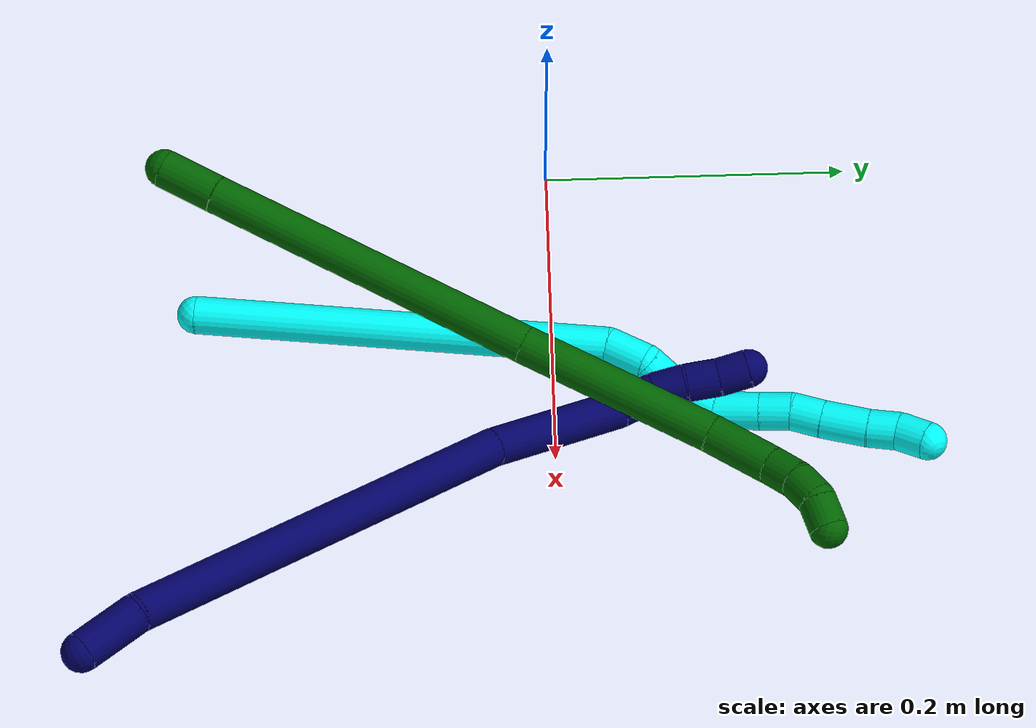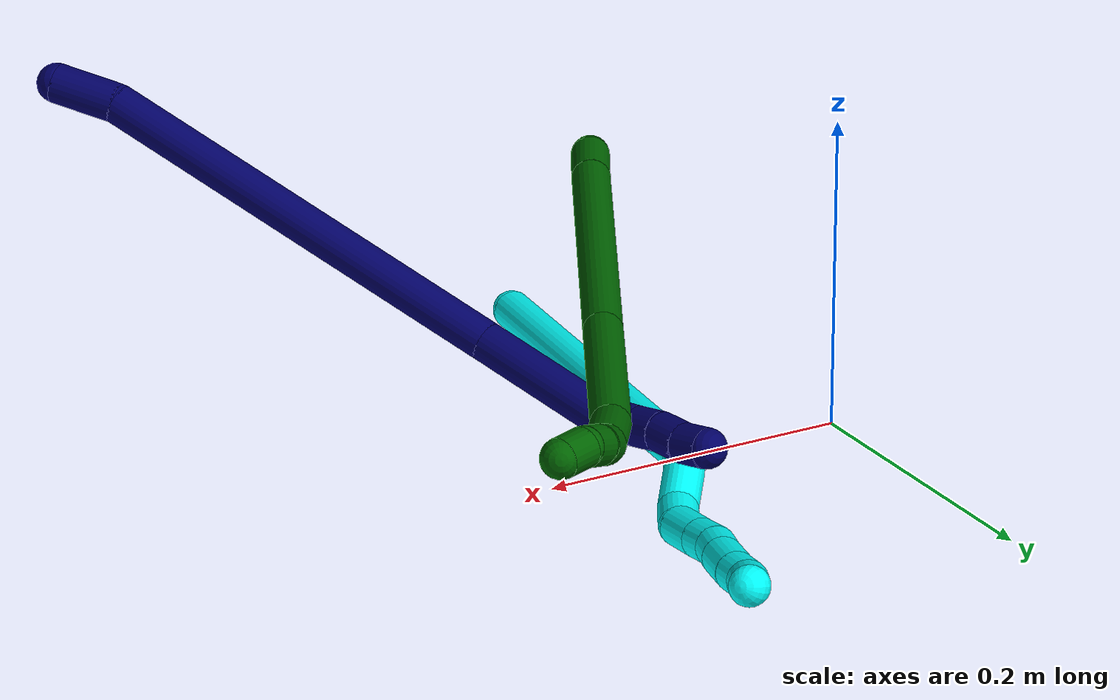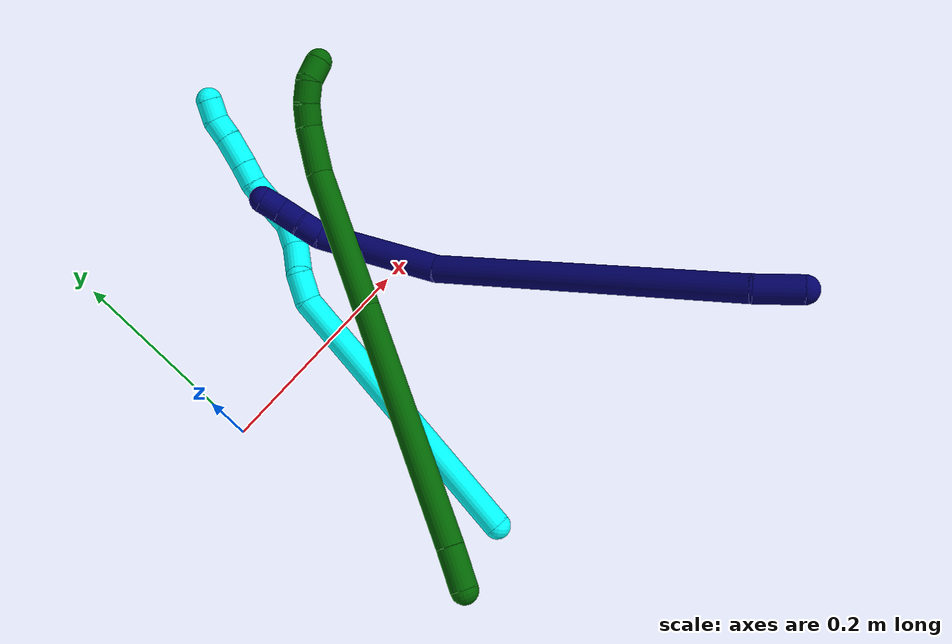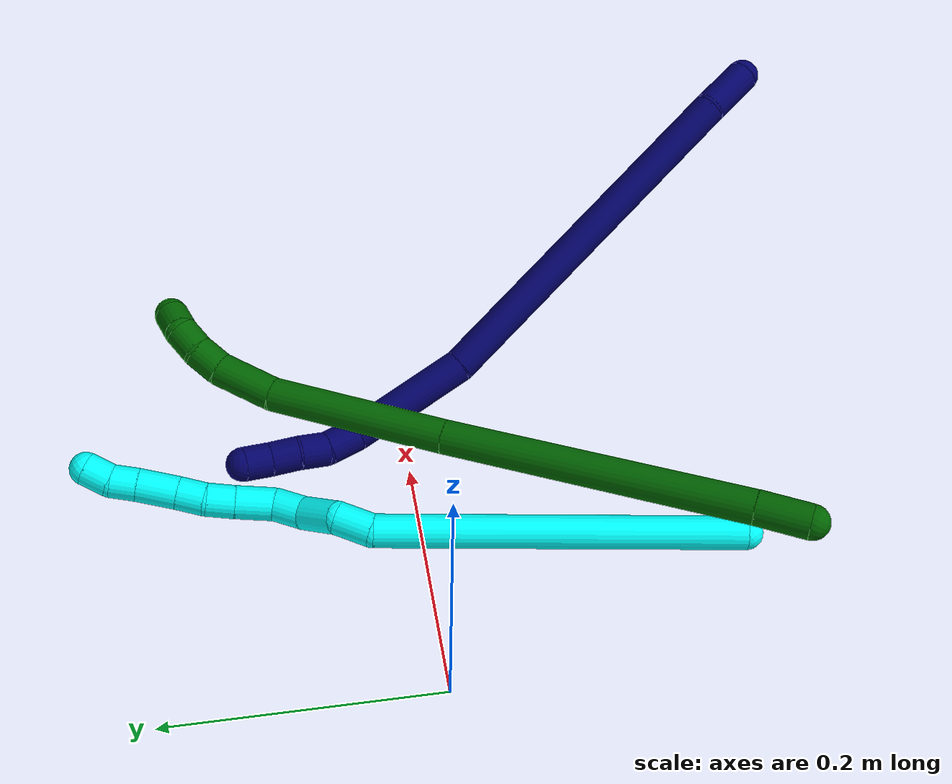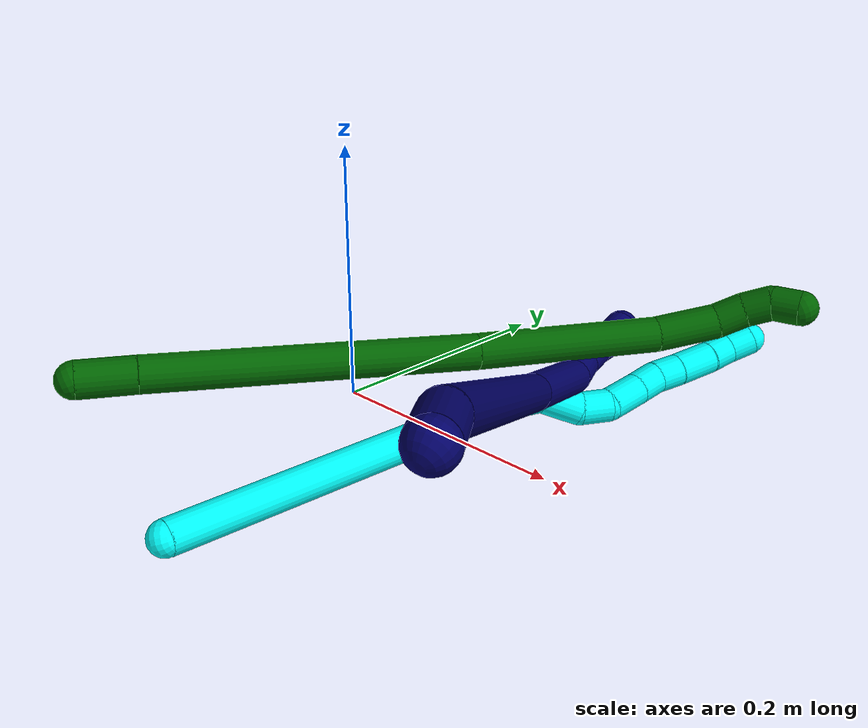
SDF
<sdf version="1.7">
 <world name="default">
  <model name="3">
   <static>0</static>
   <link name="3">
    <collision name="collision-cylinder-e_1_1_4">
     <pose>0.004925 0.107687 0.08381 -0.909442 0.036074 -0.017638</pose>
     <geometry><cylinder><radius>0.0125</radius><length>0.273092</length></cylinder></geometry>
     <surface>
      <friction><ode><mu>1.16</mu><mu2>1.16</mu2><slip1>0</slip1><slip2>0</slip2></ode></friction>
      <contact><ode><kp>1e+06</kp><kd>1</kd><max_vel>0</max_vel><min_depth>0.001</min_depth></ode></contact>
     </surface>
    </collision>
    <visual name="visual-cylinder-e_1_1_4">
     <pose>0.004925 0.107687 0.08381 -0.909442 0.036074 -0.017638</pose>
     <geometry><cylinder><radius>0.0125</radius><length>0.273092</length></cylinder></geometry>
     <material><ambient>0.003922 1 0.996078 1</ambient></material>
    </visual>
    <collision name="collision-cylinder-e_2_4_5">
     <pose>0.01145 0.222321 0.179661 -0.523342 0.11464 -0.030733</pose>
     <geometry><cylinder><radius>0.0125</radius><length>0.027987</length></cylinder></geometry>
     <surface>
      <friction><ode><mu>1.16</mu><mu2>1.16</mu2><slip1>0</slip1><slip2>0</slip2></ode></friction>
      <contact><ode><kp>1e+06</kp><kd>1</kd><max_vel>0</max_vel><min_depth>0.001</min_depth></ode></contact>
     </surface>
    </collision>
    <visual name="visual-cylinder-e_2_4_5">
     <pose>0.01145 0.222321 0.179661 -0.523342 0.11464 -0.030733</pose>
     <geometry><cylinder><radius>0.0125</radius><length>0.027987</length></cylinder></geometry>
     <material><ambient>0.003922 1 0.996078 1</ambient></material>
    </visual>
    <collision name="collision-cylinder-e_3_5_6">
     <pose>0.022306 0.235773 0.202808 -0.529772 0.623421 -0.174365</pose>
     <geometry><cylinder><radius>0.0125</radius><length>0.031704</length></cylinder></geometry>
     <surface>
      <friction><ode><mu>1.16</mu><mu2>1.16</mu2><slip1>0</slip1><slip2>0</slip2></ode></friction>
      <contact><ode><kp>1e+06</kp><kd>1</kd><max_vel>0</max_vel><min_depth>0.001</min_depth></ode></contact>
     </surface>
    </collision>
    <visual name="visual-cylinder-e_3_5_6">
     <pose>0.022306 0.235773 0.202808 -0.529772 0.623421 -0.174365</pose>
     <geometry><cylinder><radius>0.0125</radius><length>0.031704</length></cylinder></geometry>
     <material><ambient>0.003922 1 0.996078 1</ambient></material>
    </visual>
    <collision name="collision-cylinder-e_4_6_7">
     <pose>0.033992 0.248415 0.22385 -0.553411 0.20527 -0.058484</pose>
     <geometry><cylinder><radius>0.0125</radius><length>0.02386</length></cylinder></geometry>
     <surface>
      <friction><ode><mu>1.16</mu><mu2>1.16</mu2><slip1>0</slip1><slip2>0</slip2></ode></friction>
      <contact><ode><kp>1e+06</kp><kd>1</kd><max_vel>0</max_vel><min_depth>0.001</min_depth></ode></contact>
     </surface>
    </collision>
    <visual name="visual-cylinder-e_4_6_7">
     <pose>0.033992 0.248415 0.22385 -0.553411 0.20527 -0.058484</pose>
     <geometry><cylinder><radius>0.0125</radius><length>0.02386</length></cylinder></geometry>
     <material><ambient>0.003922 1 0.996078 1</ambient></material>
    </visual>
    <collision name="collision-cylinder-e_5_7_8">
     <pose>0.035342 0.266265 0.243169 -0.895375 -0.071931 0.034553</pose>
     <geometry><cylinder><radius>0.0125</radius><length>0.030092</length></cylinder></geometry>
     <surface>
      <friction><ode><mu>1.16</mu><mu2>1.16</mu2><slip1>0</slip1><slip2>0</slip2></ode></friction>
      <contact><ode><kp>1e+06</kp><kd>1</kd><max_vel>0</max_vel><min_depth>0.001</min_depth></ode></contact>
     </surface>
    </collision>
    <visual name="visual-cylinder-e_5_7_8">
     <pose>0.035342 0.266265 0.243169 -0.895375 -0.071931 0.034553</pose>
     <geometry><cylinder><radius>0.0125</radius><length>0.030092</length></cylinder></geometry>
     <material><ambient>0.003922 1 0.996078 1</ambient></material>
    </visual>
    <collision name="collision-cylinder-e_6_8_9">
     <pose>0.033155 0.286081 0.259393 -0.869603 -0.103885 0.048283</pose>
     <geometry><cylinder><radius>0.0125</radius><length>0.021326</length></cylinder></geometry>
     <surface>
      <friction><ode><mu>1.16</mu><mu2>1.16</mu2><slip1>0</slip1><slip2>0</slip2></ode></friction>
      <contact><ode><kp>1e+06</kp><kd>1</kd><max_vel>0</max_vel><min_depth>0.001</min_depth></ode></contact>
     </surface>
    </collision>
    <visual name="visual-cylinder-e_6_8_9">
     <pose>0.033155 0.286081 0.259393 -0.869603 -0.103885 0.048283</pose>
     <geometry><cylinder><radius>0.0125</radius><length>0.021326</length></cylinder></geometry>
     <material><ambient>0.003922 1 0.996078 1</ambient></material>
    </visual>
    <collision name="collision-cylinder-e_7_9_10">
     <pose>0.03236 0.300639 0.274285 -0.675833 0.030047 -0.010559</pose>
     <geometry><cylinder><radius>0.0125</radius><length>0.020647</length></cylinder></geometry>
     <surface>
      <friction><ode><mu>1.16</mu><mu2>1.16</mu2><slip1>0</slip1><slip2>0</slip2></ode></friction>
      <contact><ode><kp>1e+06</kp><kd>1</kd><max_vel>0</max_vel><min_depth>0.001</min_depth></ode></contact>
     </surface>
    </collision>
    <visual name="visual-cylinder-e_7_9_10">
     <pose>0.03236 0.300639 0.274285 -0.675833 0.030047 -0.010559</pose>
     <geometry><cylinder><radius>0.0125</radius><length>0.020647</length></cylinder></geometry>
     <material><ambient>0.003922 1 0.996078 1</ambient></material>
    </visual>
    <collision name="collision-cylinder-e_8_10_11">
     <pose>0.032638 0.317194 0.293895 -0.718173 -0.002083 0.000782</pose>
     <geometry><cylinder><radius>0.0125</radius><length>0.030701</length></cylinder></geometry>
     <surface>
      <friction><ode><mu>1.16</mu><mu2>1.16</mu2><slip1>0</slip1><slip2>0</slip2></ode></friction>
      <contact><ode><kp>1e+06</kp><kd>1</kd><max_vel>0</max_vel><min_depth>0.001</min_depth></ode></contact>
     </surface>
    </collision>
    <visual name="visual-cylinder-e_8_10_11">
     <pose>0.032638 0.317194 0.293895 -0.718173 -0.002083 0.000782</pose>
     <geometry><cylinder><radius>0.0125</radius><length>0.030701</length></cylinder></geometry>
     <material><ambient>0.003922 1 0.996078 1</ambient></material>
    </visual>
    <collision name="collision-cylinder-e_9_11_12">
     <pose>0.032034 0.334467 0.312486 -0.795301 -0.056857 0.023887</pose>
     <geometry><cylinder><radius>0.0125</radius><length>0.020121</length></cylinder></geometry>
     <surface>
      <friction><ode><mu>1.16</mu><mu2>1.16</mu2><slip1>0</slip1><slip2>0</slip2></ode></friction>
      <contact><ode><kp>1e+06</kp><kd>1</kd><max_vel>0</max_vel><min_depth>0.001</min_depth></ode></contact>
     </surface>
    </collision>
    <visual name="visual-cylinder-e_9_11_12">
     <pose>0.032034 0.334467 0.312486 -0.795301 -0.056857 0.023887</pose>
     <geometry><cylinder><radius>0.0125</radius><length>0.020121</length></cylinder></geometry>
     <material><ambient>0.003922 1 0.996078 1</ambient></material>
    </visual>
    <collision name="collision-cylinder-e_10_12_2">
     <pose>0.030598 0.346332 0.328573 -0.478061 -0.084513 0.020607</pose>
     <geometry><cylinder><radius>0.0125</radius><length>0.020472</length></cylinder></geometry>
     <surface>
      <friction><ode><mu>1.16</mu><mu2>1.16</mu2><slip1>0</slip1><slip2>0</slip2></ode></friction>
      <contact><ode><kp>1e+06</kp><kd>1</kd><max_vel>0</max_vel><min_depth>0.001</min_depth></ode></contact>
     </surface>
    </collision>
    <visual name="visual-cylinder-e_10_12_2">
     <pose>0.030598 0.346332 0.328573 -0.478061 -0.084513 0.020607</pose>
     <geometry><cylinder><radius>0.0125</radius><length>0.020472</length></cylinder></geometry>
     <material><ambient>0.003922 1 0.996078 1</ambient></material>
    </visual>
    <collision name="collision-sphere-2">
     <pose>0.029734 0.351024 0.337629 0 -0 0</pose>
     <geometry><sphere><radius>0.0125</radius></sphere></geometry>
     <surface>
      <friction><ode><mu>1.16</mu><mu2>1.16</mu2><slip1>0</slip1><slip2>0</slip2></ode></friction>
      <contact><ode><kp>1e+06</kp><kd>1</kd><max_vel>0</max_vel><min_depth>0.001</min_depth></ode></contact>
     </surface>
    </collision>
    <visual name="visual-sphere-2">
     <pose>0.029734 0.351024 0.337629 0 -0 0</pose>
     <geometry><sphere><radius>0.0125</radius></sphere></geometry>
     <material><ambient>0.003922 1 0.996078 1</ambient></material>
    </visual>
    <collision name="collision-sphere-12">
     <pose>0.031462 0.34164 0.319517 0 -0 0</pose>
     <geometry><sphere><radius>0.0125</radius></sphere></geometry>
     <surface>
      <friction><ode><mu>1.16</mu><mu2>1.16</mu2><slip1>0</slip1><slip2>0</slip2></ode></friction>
      <contact><ode><kp>1e+06</kp><kd>1</kd><max_vel>0</max_vel><min_depth>0.001</min_depth></ode></contact>
     </surface>
    </collision>
    <visual name="visual-sphere-12">
     <pose>0.031462 0.34164 0.319517 0 -0 0</pose>
     <geometry><sphere><radius>0.0125</radius></sphere></geometry>
     <material><ambient>0.003922 1 0.996078 1</ambient></material>
    </visual>
    <collision name="collision-sphere-11">
     <pose>0.032606 0.327295 0.305454 0 -0 0</pose>
     <geometry><sphere><radius>0.0125</radius></sphere></geometry>
     <surface>
      <friction><ode><mu>1.16</mu><mu2>1.16</mu2><slip1>0</slip1><slip2>0</slip2></ode></friction>
      <contact><ode><kp>1e+06</kp><kd>1</kd><max_vel>0</max_vel><min_depth>0.001</min_depth></ode></contact>
     </surface>
    </collision>
    <visual name="visual-sphere-11">
     <pose>0.032606 0.327295 0.305454 0 -0 0</pose>
     <geometry><sphere><radius>0.0125</radius></sphere></geometry>
     <material><ambient>0.003922 1 0.996078 1</ambient></material>
    </visual>
    <collision name="collision-sphere-10">
     <pose>0.03267 0.307094 0.282336 0 -0 0</pose>
     <geometry><sphere><radius>0.0125</radius></sphere></geometry>
     <surface>
      <friction><ode><mu>1.16</mu><mu2>1.16</mu2><slip1>0</slip1><slip2>0</slip2></ode></friction>
      <contact><ode><kp>1e+06</kp><kd>1</kd><max_vel>0</max_vel><min_depth>0.001</min_depth></ode></contact>
     </surface>
    </collision>
    <visual name="visual-sphere-10">
     <pose>0.03267 0.307094 0.282336 0 -0 0</pose>
     <geometry><sphere><radius>0.0125</radius></sphere></geometry>
     <material><ambient>0.003922 1 0.996078 1</ambient></material>
    </visual>
    <collision name="collision-sphere-9">
     <pose>0.032049 0.294184 0.266235 0 -0 0</pose>
     <geometry><sphere><radius>0.0125</radius></sphere></geometry>
     <surface>
      <friction><ode><mu>1.16</mu><mu2>1.16</mu2><slip1>0</slip1><slip2>0</slip2></ode></friction>
      <contact><ode><kp>1e+06</kp><kd>1</kd><max_vel>0</max_vel><min_depth>0.001</min_depth></ode></contact>
     </surface>
    </collision>
    <visual name="visual-sphere-9">
     <pose>0.032049 0.294184 0.266235 0 -0 0</pose>
     <geometry><sphere><radius>0.0125</radius></sphere></geometry>
     <material><ambient>0.003922 1 0.996078 1</ambient></material>
    </visual>
    <collision name="collision-sphere-4">
     <pose>0.009849 0.215373 0.16762 0 -0 0</pose>
     <geometry><sphere><radius>0.0125</radius></sphere></geometry>
     <surface>
      <friction><ode><mu>1.16</mu><mu2>1.16</mu2><slip1>0</slip1><slip2>0</slip2></ode></friction>
      <contact><ode><kp>1e+06</kp><kd>1</kd><max_vel>0</max_vel><min_depth>0.001</min_depth></ode></contact>
     </surface>
    </collision>
    <visual name="visual-sphere-4">
     <pose>0.009849 0.215373 0.16762 0 -0 0</pose>
     <geometry><sphere><radius>0.0125</radius></sphere></geometry>
     <material><ambient>0.003922 1 0.996078 1</ambient></material>
    </visual>
    <collision name="collision-sphere-1">
     <geometry><sphere><radius>0.0125</radius></sphere></geometry>
     <surface>
      <friction><ode><mu>1.16</mu><mu2>1.16</mu2><slip1>0</slip1><slip2>0</slip2></ode></friction>
      <contact><ode><kp>1e+06</kp><kd>1</kd><max_vel>0</max_vel><min_depth>0.001</min_depth></ode></contact>
     </surface>
    </collision>
    <visual name="visual-sphere-1">
     <geometry><sphere><radius>0.0125</radius></sphere></geometry>
     <material><ambient>0.003922 1 0.996078 1</ambient></material>
    </visual>
    <collision name="collision-sphere-8">
     <pose>0.034261 0.277977 0.252551 0 -0 0</pose>
     <geometry><sphere><radius>0.0125</radius></sphere></geometry>
     <surface>
      <friction><ode><mu>1.16</mu><mu2>1.16</mu2><slip1>0</slip1><slip2>0</slip2></ode></friction>
      <contact><ode><kp>1e+06</kp><kd>1</kd><max_vel>0</max_vel><min_depth>0.001</min_depth></ode></contact>
     </surface>
    </collision>
    <visual name="visual-sphere-8">
     <pose>0.034261 0.277977 0.252551 0 -0 0</pose>
     <geometry><sphere><radius>0.0125</radius></sphere></geometry>
     <material><ambient>0.003922 1 0.996078 1</ambient></material>
    </visual>
    <collision name="collision-sphere-5">
     <pose>0.013051 0.229269 0.191702 0 -0 0</pose>
     <geometry><sphere><radius>0.0125</radius></sphere></geometry>
     <surface>
      <friction><ode><mu>1.16</mu><mu2>1.16</mu2><slip1>0</slip1><slip2>0</slip2></ode></friction>
      <contact><ode><kp>1e+06</kp><kd>1</kd><max_vel>0</max_vel><min_depth>0.001</min_depth></ode></contact>
     </surface>
    </collision>
    <visual name="visual-sphere-5">
     <pose>0.013051 0.229269 0.191702 0 -0 0</pose>
     <geometry><sphere><radius>0.0125</radius></sphere></geometry>
     <material><ambient>0.003922 1 0.996078 1</ambient></material>
    </visual>
    <collision name="collision-sphere-6">
     <pose>0.03156 0.242276 0.213914 0 -0 0</pose>
     <geometry><sphere><radius>0.0125</radius></sphere></geometry>
     <surface>
      <friction><ode><mu>1.16</mu><mu2>1.16</mu2><slip1>0</slip1><slip2>0</slip2></ode></friction>
      <contact><ode><kp>1e+06</kp><kd>1</kd><max_vel>0</max_vel><min_depth>0.001</min_depth></ode></contact>
     </surface>
    </collision>
    <visual name="visual-sphere-6">
     <pose>0.03156 0.242276 0.213914 0 -0 0</pose>
     <geometry><sphere><radius>0.0125</radius></sphere></geometry>
     <material><ambient>0.003922 1 0.996078 1</ambient></material>
    </visual>
    <collision name="collision-sphere-7">
     <pose>0.036424 0.254553 0.233786 0 -0 0</pose>
     <geometry><sphere><radius>0.0125</radius></sphere></geometry>
     <surface>
      <friction><ode><mu>1.16</mu><mu2>1.16</mu2><slip1>0</slip1><slip2>0</slip2></ode></friction>
      <contact><ode><kp>1e+06</kp><kd>1</kd><max_vel>0</max_vel><min_depth>0.001</min_depth></ode></contact>
     </surface>
    </collision>
    <visual name="visual-sphere-7">
     <pose>0.036424 0.254553 0.233786 0 -0 0</pose>
     <geometry><sphere><radius>0.0125</radius></sphere></geometry>
     <material><ambient>0.003922 1 0.996078 1</ambient></material>
    </visual>
    <inertial>
     <pose>0.01579 0.185822 0.160471 0 -0 0</pose>
     <mass>0.5</mass>
     <inertia>
      <ixx>0.001699</ixx>
      <ixy>0</ixy>
      <ixz>0</ixz>
      <iyy>0.001064</iyy>
      <iyz>0</iyz>
      <izz>-0.001398</izz>
     </inertia>
    </inertial>
   </link>
   <pose>0.095574 -0.234003 0.011495 -0.462045 1.20747 0.073544</pose>
  </model>
  <model name="6">
   <static>0</static>
   <link name="6">
    <collision name="collision-cylinder-e_1_1_4">
     <pose>0.004081 0.005126 -0.017813 -2.86141 0.216715 -1.31415</pose>
     <geometry><cylinder><radius>0.0125</radius><length>0.037959</length></cylinder></geometry>
     <surface>
      <friction><ode><mu>1.16</mu><mu2>1.16</mu2><slip1>0</slip1><slip2>0</slip2></ode></friction>
      <contact><ode><kp>1e+06</kp><kd>1</kd><max_vel>0</max_vel><min_depth>0.001</min_depth></ode></contact>
     </surface>
    </collision>
    <visual name="visual-cylinder-e_1_1_4">
     <pose>0.004081 0.005126 -0.017813 -2.86141 0.216715 -1.31415</pose>
     <geometry><cylinder><radius>0.0125</radius><length>0.037959</length></cylinder></geometry>
     <material><ambient>0 0.392157 0.003922 1</ambient></material>
    </visual>
    <collision name="collision-cylinder-e_2_4_5">
     <pose>0.035837 0.040638 -0.138935 -2.85553 0.251551 -1.44105</pose>
     <geometry><cylinder><radius>0.0125</radius><length>0.222371</length></cylinder></geometry>
     <surface>
      <friction><ode><mu>1.16</mu><mu2>1.16</mu2><slip1>0</slip1><slip2>0</slip2></ode></friction>
      <contact><ode><kp>1e+06</kp><kd>1</kd><max_vel>0</max_vel><min_depth>0.001</min_depth></ode></contact>
     </surface>
    </collision>
    <visual name="visual-cylinder-e_2_4_5">
     <pose>0.035837 0.040638 -0.138935 -2.85553 0.251551 -1.44105</pose>
     <geometry><cylinder><radius>0.0125</radius><length>0.222371</length></cylinder></geometry>
     <material><ambient>0 0.392157 0.003922 1</ambient></material>
    </visual>
    <collision name="collision-cylinder-e_3_5_6">
     <pose>0.078714 0.08794 -0.304689 -2.87704 0.230803 -1.43337</pose>
     <geometry><cylinder><radius>0.0125</radius><length>0.132913</length></cylinder></geometry>
     <surface>
      <friction><ode><mu>1.16</mu><mu2>1.16</mu2><slip1>0</slip1><slip2>0</slip2></ode></friction>
      <contact><ode><kp>1e+06</kp><kd>1</kd><max_vel>0</max_vel><min_depth>0.001</min_depth></ode></contact>
     </surface>
    </collision>
    <visual name="visual-cylinder-e_3_5_6">
     <pose>0.078714 0.08794 -0.304689 -2.87704 0.230803 -1.43337</pose>
     <geometry><cylinder><radius>0.0125</radius><length>0.132913</length></cylinder></geometry>
     <material><ambient>0 0.392157 0.003922 1</ambient></material>
    </visual>
    <collision name="collision-cylinder-e_4_6_7">
     <pose>0.09465 0.109586 -0.389034 -2.92887 0.032708 -0.30402</pose>
     <geometry><cylinder><radius>0.0125</radius><length>0.044838</length></cylinder></geometry>
     <surface>
      <friction><ode><mu>1.16</mu><mu2>1.16</mu2><slip1>0</slip1><slip2>0</slip2></ode></friction>
      <contact><ode><kp>1e+06</kp><kd>1</kd><max_vel>0</max_vel><min_depth>0.001</min_depth></ode></contact>
     </surface>
    </collision>
    <visual name="visual-cylinder-e_4_6_7">
     <pose>0.09465 0.109586 -0.389034 -2.92887 0.032708 -0.30402</pose>
     <geometry><cylinder><radius>0.0125</radius><length>0.044838</length></cylinder></geometry>
     <material><ambient>0 0.392157 0.003922 1</ambient></material>
    </visual>
    <collision name="collision-cylinder-e_5_7_8">
     <pose>0.093017 0.115512 -0.421382 -3.02763 -0.221332 2.19308</pose>
     <geometry><cylinder><radius>0.0125</radius><length>0.021553</length></cylinder></geometry>
     <surface>
      <friction><ode><mu>1.16</mu><mu2>1.16</mu2><slip1>0</slip1><slip2>0</slip2></ode></friction>
      <contact><ode><kp>1e+06</kp><kd>1</kd><max_vel>0</max_vel><min_depth>0.001</min_depth></ode></contact>
     </surface>
    </collision>
    <visual name="visual-cylinder-e_5_7_8">
     <pose>0.093017 0.115512 -0.421382 -3.02763 -0.221332 2.19308</pose>
     <geometry><cylinder><radius>0.0125</radius><length>0.021553</length></cylinder></geometry>
     <material><ambient>0 0.392157 0.003922 1</ambient></material>
    </visual>
    <collision name="collision-cylinder-e_6_8_9">
     <pose>0.087212 0.119612 -0.440882 -2.8312 -0.347003 1.68407</pose>
     <geometry><cylinder><radius>0.0125</radius><length>0.020225</length></cylinder></geometry>
     <surface>
      <friction><ode><mu>1.16</mu><mu2>1.16</mu2><slip1>0</slip1><slip2>0</slip2></ode></friction>
      <contact><ode><kp>1e+06</kp><kd>1</kd><max_vel>0</max_vel><min_depth>0.001</min_depth></ode></contact>
     </surface>
    </collision>
    <visual name="visual-cylinder-e_6_8_9">
     <pose>0.087212 0.119612 -0.440882 -2.8312 -0.347003 1.68407</pose>
     <geometry><cylinder><radius>0.0125</radius><length>0.020225</length></cylinder></geometry>
     <material><ambient>0 0.392157 0.003922 1</ambient></material>
    </visual>
    <collision name="collision-cylinder-e_7_9_2">
     <pose>0.080586 0.129361 -0.456603 -2.34304 -0.321991 0.734824</pose>
     <geometry><cylinder><radius>0.0125</radius><length>0.020142</length></cylinder></geometry>
     <surface>
      <friction><ode><mu>1.16</mu><mu2>1.16</mu2><slip1>0</slip1><slip2>0</slip2></ode></friction>
      <contact><ode><kp>1e+06</kp><kd>1</kd><max_vel>0</max_vel><min_depth>0.001</min_depth></ode></contact>
     </surface>
    </collision>
    <visual name="visual-cylinder-e_7_9_2">
     <pose>0.080586 0.129361 -0.456603 -2.34304 -0.321991 0.734824</pose>
     <geometry><cylinder><radius>0.0125</radius><length>0.020142</length></cylinder></geometry>
     <material><ambient>0 0.392157 0.003922 1</ambient></material>
    </visual>
    <collision name="collision-sphere-2">
     <pose>0.077399 0.136204 -0.463269 0 -0 0</pose>
     <geometry><sphere><radius>0.0125</radius></sphere></geometry>
     <surface>
      <friction><ode><mu>1.16</mu><mu2>1.16</mu2><slip1>0</slip1><slip2>0</slip2></ode></friction>
      <contact><ode><kp>1e+06</kp><kd>1</kd><max_vel>0</max_vel><min_depth>0.001</min_depth></ode></contact>
     </surface>
    </collision>
    <visual name="visual-sphere-2">
     <pose>0.077399 0.136204 -0.463269 0 -0 0</pose>
     <geometry><sphere><radius>0.0125</radius></sphere></geometry>
     <material><ambient>0 0.392157 0.003922 1</ambient></material>
    </visual>
    <collision name="collision-sphere-9">
     <pose>0.083773 0.122517 -0.449938 0 -0 0</pose>
     <geometry><sphere><radius>0.0125</radius></sphere></geometry>
     <surface>
      <friction><ode><mu>1.16</mu><mu2>1.16</mu2><slip1>0</slip1><slip2>0</slip2></ode></friction>
      <contact><ode><kp>1e+06</kp><kd>1</kd><max_vel>0</max_vel><min_depth>0.001</min_depth></ode></contact>
     </surface>
    </collision>
    <visual name="visual-sphere-9">
     <pose>0.083773 0.122517 -0.449938 0 -0 0</pose>
     <geometry><sphere><radius>0.0125</radius></sphere></geometry>
     <material><ambient>0 0.392157 0.003922 1</ambient></material>
    </visual>
    <collision name="collision-sphere-4">
     <pose>0.008162 0.010251 -0.035625 0 -0 0</pose>
     <geometry><sphere><radius>0.0125</radius></sphere></geometry>
     <surface>
      <friction><ode><mu>1.16</mu><mu2>1.16</mu2><slip1>0</slip1><slip2>0</slip2></ode></friction>
      <contact><ode><kp>1e+06</kp><kd>1</kd><max_vel>0</max_vel><min_depth>0.001</min_depth></ode></contact>
     </surface>
    </collision>
    <visual name="visual-sphere-4">
     <pose>0.008162 0.010251 -0.035625 0 -0 0</pose>
     <geometry><sphere><radius>0.0125</radius></sphere></geometry>
     <material><ambient>0 0.392157 0.003922 1</ambient></material>
    </visual>
    <collision name="collision-sphere-1">
     <geometry><sphere><radius>0.0125</radius></sphere></geometry>
     <surface>
      <friction><ode><mu>1.16</mu><mu2>1.16</mu2><slip1>0</slip1><slip2>0</slip2></ode></friction>
      <contact><ode><kp>1e+06</kp><kd>1</kd><max_vel>0</max_vel><min_depth>0.001</min_depth></ode></contact>
     </surface>
    </collision>
    <visual name="visual-sphere-1">
     <geometry><sphere><radius>0.0125</radius></sphere></geometry>
     <material><ambient>0 0.392157 0.003922 1</ambient></material>
    </visual>
    <collision name="collision-sphere-8">
     <pose>0.090651 0.116708 -0.431827 0 -0 0</pose>
     <geometry><sphere><radius>0.0125</radius></sphere></geometry>
     <surface>
      <friction><ode><mu>1.16</mu><mu2>1.16</mu2><slip1>0</slip1><slip2>0</slip2></ode></friction>
      <contact><ode><kp>1e+06</kp><kd>1</kd><max_vel>0</max_vel><min_depth>0.001</min_depth></ode></contact>
     </surface>
    </collision>
    <visual name="visual-sphere-8">
     <pose>0.090651 0.116708 -0.431827 0 -0 0</pose>
     <geometry><sphere><radius>0.0125</radius></sphere></geometry>
     <material><ambient>0 0.392157 0.003922 1</ambient></material>
    </visual>
    <collision name="collision-sphere-5">
     <pose>0.063511 0.071024 -0.242245 0 -0 0</pose>
     <geometry><sphere><radius>0.0125</radius></sphere></geometry>
     <surface>
      <friction><ode><mu>1.16</mu><mu2>1.16</mu2><slip1>0</slip1><slip2>0</slip2></ode></friction>
      <contact><ode><kp>1e+06</kp><kd>1</kd><max_vel>0</max_vel><min_depth>0.001</min_depth></ode></contact>
     </surface>
    </collision>
    <visual name="visual-sphere-5">
     <pose>0.063511 0.071024 -0.242245 0 -0 0</pose>
     <geometry><sphere><radius>0.0125</radius></sphere></geometry>
     <material><ambient>0 0.392157 0.003922 1</ambient></material>
    </visual>
    <collision name="collision-sphere-6">
     <pose>0.093916 0.104855 -0.367132 0 -0 0</pose>
     <geometry><sphere><radius>0.0125</radius></sphere></geometry>
     <surface>
      <friction><ode><mu>1.16</mu><mu2>1.16</mu2><slip1>0</slip1><slip2>0</slip2></ode></friction>
      <contact><ode><kp>1e+06</kp><kd>1</kd><max_vel>0</max_vel><min_depth>0.001</min_depth></ode></contact>
     </surface>
    </collision>
    <visual name="visual-sphere-6">
     <pose>0.093916 0.104855 -0.367132 0 -0 0</pose>
     <geometry><sphere><radius>0.0125</radius></sphere></geometry>
     <material><ambient>0 0.392157 0.003922 1</ambient></material>
    </visual>
    <collision name="collision-sphere-7">
     <pose>0.095383 0.114317 -0.410936 0 -0 0</pose>
     <geometry><sphere><radius>0.0125</radius></sphere></geometry>
     <surface>
      <friction><ode><mu>1.16</mu><mu2>1.16</mu2><slip1>0</slip1><slip2>0</slip2></ode></friction>
      <contact><ode><kp>1e+06</kp><kd>1</kd><max_vel>0</max_vel><min_depth>0.001</min_depth></ode></contact>
     </surface>
    </collision>
    <visual name="visual-sphere-7">
     <pose>0.095383 0.114317 -0.410936 0 -0 0</pose>
     <geometry><sphere><radius>0.0125</radius></sphere></geometry>
     <material><ambient>0 0.392157 0.003922 1</ambient></material>
    </visual>
    <inertial>
     <pose>0.056443 0.066695 -0.233415 0 -0 0</pose>
     <mass>0.5</mass>
     <inertia>
      <ixx>-0.000928</ixx>
      <ixy>0</ixy>
      <ixz>0</ixz>
      <iyy>-0.00115</iyy>
      <iyz>0</iyz>
      <izz>-0.000622</izz>
     </inertia>
    </inertial>
   </link>
   <pose>0.029841 -0.247735 0.101533 -2.01322 0.742764 2.35832</pose>
  </model>
  <model name="7">
   <static>0</static>
   <link name="7">
    <collision name="collision-cylinder-e_1_1_4">
     <pose>0.012449 0.006767 -0.015357 -2.72657 0.638227 -2.00692</pose>
     <geometry><cylinder><radius>0.0125</radius><length>0.04179</length></cylinder></geometry>
     <surface>
      <friction><ode><mu>1.16</mu><mu2>1.16</mu2><slip1>0</slip1><slip2>0</slip2></ode></friction>
      <contact><ode><kp>1e+06</kp><kd>1</kd><max_vel>0</max_vel><min_depth>0.001</min_depth></ode></contact>
     </surface>
    </collision>
    <visual name="visual-cylinder-e_1_1_4">
     <pose>0.012449 0.006767 -0.015357 -2.72657 0.638227 -2.00692</pose>
     <geometry><cylinder><radius>0.0125</radius><length>0.04179</length></cylinder></geometry>
     <material><ambient>0.003922 0 0.403922 1</ambient></material>
    </visual>
    <collision name="collision-cylinder-e_2_4_5">
     <pose>0.103087 0.087514 -0.11897 -2.44396 0.596461 -1.40343</pose>
     <geometry><cylinder><radius>0.0125</radius><length>0.278394</length></cylinder></geometry>
     <surface>
      <friction><ode><mu>1.16</mu><mu2>1.16</mu2><slip1>0</slip1><slip2>0</slip2></ode></friction>
      <contact><ode><kp>1e+06</kp><kd>1</kd><max_vel>0</max_vel><min_depth>0.001</min_depth></ode></contact>
     </surface>
    </collision>
    <visual name="visual-cylinder-e_2_4_5">
     <pose>0.103087 0.087514 -0.11897 -2.44396 0.596461 -1.40343</pose>
     <geometry><cylinder><radius>0.0125</radius><length>0.278394</length></cylinder></geometry>
     <material><ambient>0.003922 0 0.403922 1</ambient></material>
    </visual>
    <collision name="collision-cylinder-e_3_5_6">
     <pose>0.199061 0.186035 -0.241602 -2.52161 0.398526 -1.12501</pose>
     <geometry><cylinder><radius>0.0125</radius><length>0.091658</length></cylinder></geometry>
     <surface>
      <friction><ode><mu>1.16</mu><mu2>1.16</mu2><slip1>0</slip1><slip2>0</slip2></ode></friction>
      <contact><ode><kp>1e+06</kp><kd>1</kd><max_vel>0</max_vel><min_depth>0.001</min_depth></ode></contact>
     </surface>
    </collision>
    <visual name="visual-cylinder-e_3_5_6">
     <pose>0.199061 0.186035 -0.241602 -2.52161 0.398526 -1.12501</pose>
     <geometry><cylinder><radius>0.0125</radius><length>0.091658</length></cylinder></geometry>
     <material><ambient>0.003922 0 0.403922 1</ambient></material>
    </visual>
    <collision name="collision-cylinder-e_4_6_7">
     <pose>0.221269 0.214198 -0.287393 -2.8343 0.353876 -1.71405</pose>
     <geometry><cylinder><radius>0.0125</radius><length>0.025532</length></cylinder></geometry>
     <surface>
      <friction><ode><mu>1.16</mu><mu2>1.16</mu2><slip1>0</slip1><slip2>0</slip2></ode></friction>
      <contact><ode><kp>1e+06</kp><kd>1</kd><max_vel>0</max_vel><min_depth>0.001</min_depth></ode></contact>
     </surface>
    </collision>
    <visual name="visual-cylinder-e_4_6_7">
     <pose>0.221269 0.214198 -0.287393 -2.8343 0.353876 -1.71405</pose>
     <geometry><cylinder><radius>0.0125</radius><length>0.025532</length></cylinder></geometry>
     <material><ambient>0.003922 0 0.403922 1</ambient></material>
    </visual>
    <collision name="collision-cylinder-e_5_7_8">
     <pose>0.226285 0.220558 -0.309002 -2.87927 0.056042 -0.418707</pose>
     <geometry><cylinder><radius>0.0125</radius><length>0.021145</length></cylinder></geometry>
     <surface>
      <friction><ode><mu>1.16</mu><mu2>1.16</mu2><slip1>0</slip1><slip2>0</slip2></ode></friction>
      <contact><ode><kp>1e+06</kp><kd>1</kd><max_vel>0</max_vel><min_depth>0.001</min_depth></ode></contact>
     </surface>
    </collision>
    <visual name="visual-cylinder-e_5_7_8">
     <pose>0.226285 0.220558 -0.309002 -2.87927 0.056042 -0.418707</pose>
     <geometry><cylinder><radius>0.0125</radius><length>0.021145</length></cylinder></geometry>
     <material><ambient>0.003922 0 0.403922 1</ambient></material>
    </visual>
    <collision name="collision-cylinder-e_6_8_9">
     <pose>0.227688 0.227707 -0.328853 -2.71302 0.07627 -0.3471</pose>
     <geometry><cylinder><radius>0.0125</radius><length>0.021294</length></cylinder></geometry>
     <surface>
      <friction><ode><mu>1.16</mu><mu2>1.16</mu2><slip1>0</slip1><slip2>0</slip2></ode></friction>
      <contact><ode><kp>1e+06</kp><kd>1</kd><max_vel>0</max_vel><min_depth>0.001</min_depth></ode></contact>
     </surface>
    </collision>
    <visual name="visual-cylinder-e_6_8_9">
     <pose>0.227688 0.227707 -0.328853 -2.71302 0.07627 -0.3471</pose>
     <geometry><cylinder><radius>0.0125</radius><length>0.021294</length></cylinder></geometry>
     <material><ambient>0.003922 0 0.403922 1</ambient></material>
    </visual>
    <collision name="collision-cylinder-e_7_9_2">
     <pose>0.22939 0.234706 -0.348225 -2.88131 0.088277 -0.650918</pose>
     <geometry><cylinder><radius>0.0125</radius><length>0.020187</length></cylinder></geometry>
     <surface>
      <friction><ode><mu>1.16</mu><mu2>1.16</mu2><slip1>0</slip1><slip2>0</slip2></ode></friction>
      <contact><ode><kp>1e+06</kp><kd>1</kd><max_vel>0</max_vel><min_depth>0.001</min_depth></ode></contact>
     </surface>
    </collision>
    <visual name="visual-cylinder-e_7_9_2">
     <pose>0.22939 0.234706 -0.348225 -2.88131 0.088277 -0.650918</pose>
     <geometry><cylinder><radius>0.0125</radius><length>0.020187</length></cylinder></geometry>
     <material><ambient>0.003922 0 0.403922 1</ambient></material>
    </visual>
    <collision name="collision-sphere-2">
     <pose>0.230279 0.237294 -0.35794 0 -0 0</pose>
     <geometry><sphere><radius>0.0125</radius></sphere></geometry>
     <surface>
      <friction><ode><mu>1.16</mu><mu2>1.16</mu2><slip1>0</slip1><slip2>0</slip2></ode></friction>
      <contact><ode><kp>1e+06</kp><kd>1</kd><max_vel>0</max_vel><min_depth>0.001</min_depth></ode></contact>
     </surface>
    </collision>
    <visual name="visual-sphere-2">
     <pose>0.230279 0.237294 -0.35794 0 -0 0</pose>
     <geometry><sphere><radius>0.0125</radius></sphere></geometry>
     <material><ambient>0.003922 0 0.403922 1</ambient></material>
    </visual>
    <collision name="collision-sphere-9">
     <pose>0.2285 0.232119 -0.338509 0 -0 0</pose>
     <geometry><sphere><radius>0.0125</radius></sphere></geometry>
     <surface>
      <friction><ode><mu>1.16</mu><mu2>1.16</mu2><slip1>0</slip1><slip2>0</slip2></ode></friction>
      <contact><ode><kp>1e+06</kp><kd>1</kd><max_vel>0</max_vel><min_depth>0.001</min_depth></ode></contact>
     </surface>
    </collision>
    <visual name="visual-sphere-9">
     <pose>0.2285 0.232119 -0.338509 0 -0 0</pose>
     <geometry><sphere><radius>0.0125</radius></sphere></geometry>
     <material><ambient>0.003922 0 0.403922 1</ambient></material>
    </visual>
    <collision name="collision-sphere-4">
     <pose>0.024897 0.013533 -0.030714 0 -0 0</pose>
     <geometry><sphere><radius>0.0125</radius></sphere></geometry>
     <surface>
      <friction><ode><mu>1.16</mu><mu2>1.16</mu2><slip1>0</slip1><slip2>0</slip2></ode></friction>
      <contact><ode><kp>1e+06</kp><kd>1</kd><max_vel>0</max_vel><min_depth>0.001</min_depth></ode></contact>
     </surface>
    </collision>
    <visual name="visual-sphere-4">
     <pose>0.024897 0.013533 -0.030714 0 -0 0</pose>
     <geometry><sphere><radius>0.0125</radius></sphere></geometry>
     <material><ambient>0.003922 0 0.403922 1</ambient></material>
    </visual>
    <collision name="collision-sphere-1">
     <geometry><sphere><radius>0.0125</radius></sphere></geometry>
     <surface>
      <friction><ode><mu>1.16</mu><mu2>1.16</mu2><slip1>0</slip1><slip2>0</slip2></ode></friction>
      <contact><ode><kp>1e+06</kp><kd>1</kd><max_vel>0</max_vel><min_depth>0.001</min_depth></ode></contact>
     </surface>
    </collision>
    <visual name="visual-sphere-1">
     <geometry><sphere><radius>0.0125</radius></sphere></geometry>
     <material><ambient>0.003922 0 0.403922 1</ambient></material>
    </visual>
    <collision name="collision-sphere-8">
     <pose>0.226877 0.223295 -0.319197 0 -0 0</pose>
     <geometry><sphere><radius>0.0125</radius></sphere></geometry>
     <surface>
      <friction><ode><mu>1.16</mu><mu2>1.16</mu2><slip1>0</slip1><slip2>0</slip2></ode></friction>
      <contact><ode><kp>1e+06</kp><kd>1</kd><max_vel>0</max_vel><min_depth>0.001</min_depth></ode></contact>
     </surface>
    </collision>
    <visual name="visual-sphere-8">
     <pose>0.226877 0.223295 -0.319197 0 -0 0</pose>
     <geometry><sphere><radius>0.0125</radius></sphere></geometry>
     <material><ambient>0.003922 0 0.403922 1</ambient></material>
    </visual>
    <collision name="collision-sphere-5">
     <pose>0.181276 0.161494 -0.207226 0 -0 0</pose>
     <geometry><sphere><radius>0.0125</radius></sphere></geometry>
     <surface>
      <friction><ode><mu>1.16</mu><mu2>1.16</mu2><slip1>0</slip1><slip2>0</slip2></ode></friction>
      <contact><ode><kp>1e+06</kp><kd>1</kd><max_vel>0</max_vel><min_depth>0.001</min_depth></ode></contact>
     </surface>
    </collision>
    <visual name="visual-sphere-5">
     <pose>0.181276 0.161494 -0.207226 0 -0 0</pose>
     <geometry><sphere><radius>0.0125</radius></sphere></geometry>
     <material><ambient>0.003922 0 0.403922 1</ambient></material>
    </visual>
    <collision name="collision-sphere-6">
     <pose>0.216845 0.210576 -0.275979 0 -0 0</pose>
     <geometry><sphere><radius>0.0125</radius></sphere></geometry>
     <surface>
      <friction><ode><mu>1.16</mu><mu2>1.16</mu2><slip1>0</slip1><slip2>0</slip2></ode></friction>
      <contact><ode><kp>1e+06</kp><kd>1</kd><max_vel>0</max_vel><min_depth>0.001</min_depth></ode></contact>
     </surface>
    </collision>
    <visual name="visual-sphere-6">
     <pose>0.216845 0.210576 -0.275979 0 -0 0</pose>
     <geometry><sphere><radius>0.0125</radius></sphere></geometry>
     <material><ambient>0.003922 0 0.403922 1</ambient></material>
    </visual>
    <collision name="collision-sphere-7">
     <pose>0.225693 0.21782 -0.298807 0 -0 0</pose>
     <geometry><sphere><radius>0.0125</radius></sphere></geometry>
     <surface>
      <friction><ode><mu>1.16</mu><mu2>1.16</mu2><slip1>0</slip1><slip2>0</slip2></ode></friction>
      <contact><ode><kp>1e+06</kp><kd>1</kd><max_vel>0</max_vel><min_depth>0.001</min_depth></ode></contact>
     </surface>
    </collision>
    <visual name="visual-sphere-7">
     <pose>0.225693 0.21782 -0.298807 0 -0 0</pose>
     <geometry><sphere><radius>0.0125</radius></sphere></geometry>
     <material><ambient>0.003922 0 0.403922 1</ambient></material>
    </visual>
    <inertial>
     <pose>0.134756 0.122834 -0.167622 0 -0 0</pose>
     <mass>0.5</mass>
     <inertia>
      <ixx>-0.001246</ixx>
      <ixy>0</ixy>
      <ixz>0</ixz>
      <iyy>-0.001119</iyy>
      <iyz>0</iyz>
      <izz>-0.002078</izz>
     </inertia>
    </inertial>
   </link>
   <pose>0.387741 -0.287901 0.203702 -2.03177 0.385931 -3.07531</pose>
  </model>
 </world>
</sdf>
